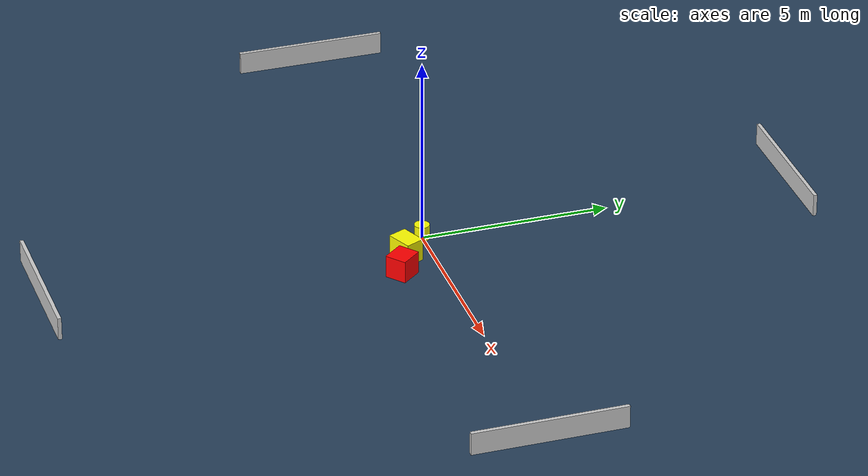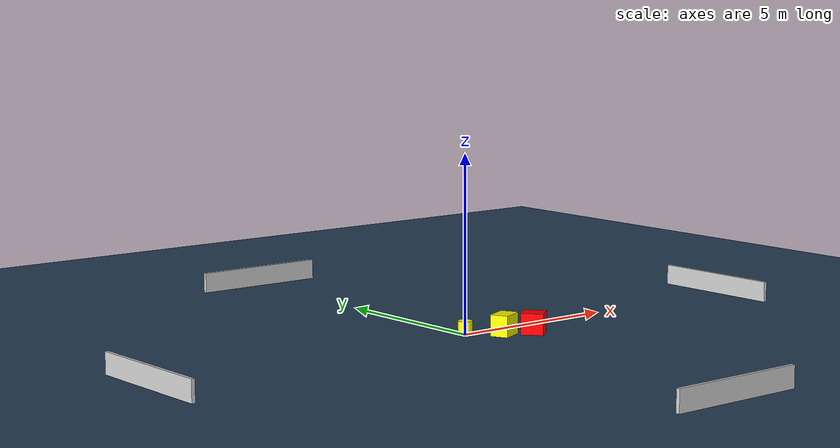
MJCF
<?xml version="1.0" ?>
<mujoco model="generated_environment">
  <option timestep="0.01" integrator="RK4" cone="elliptic"/>
  <default>
    <geom density="1"/>
  </default>
  <asset>
    <texture builtin="gradient" height="3072" name="skybox" rgb1="0.3 0.5 0.7" rgb2="0 0 0" type="skybox" width="512"/>
    <texture builtin="checker" height="300" name="groundplane" rgb1="0.2 0.3 0.4" rgb2="0.1 0.2 0.3" type="2d" width="300"/>
    <material name="groundplane" reflectance="0.2" texrepeat="5 5" texture="groundplane"/>
  </asset>
  <worldbody>
    <light dir="0 0 -1" directional="true" pos="0 0 1.5"/>
    <geom condim="3" friction="0.5 0.005 0.001" material="groundplane" name="floor" pos="0 0 0" size="0 0 0.05" type="plane"/>
    <body name="walls">
      <geom name="wall_1" condim="4" pos="-10.0 0.0 0.3" rgba="0.800000011920929 0.800000011920929 0.800000011920929 1.0" size="0.05 2.0 0.3" type="box"/>
      <geom name="wall_2" condim="4" pos="10.0 0.0 0.3" rgba="0.800000011920929 0.800000011920929 0.800000011920929 1.0" size="0.05 2.0 0.3" type="box"/>
      <geom name="wall_3" condim="4" pos="0.0 -10.0 0.3" rgba="0.800000011920929 0.800000011920929 0.800000011920929 1.0" size="2.0 0.05 0.3" type="box"/>
      <geom name="wall_4" condim="4" pos="0.0 10.0 0.3" rgba="0.800000011920929 0.800000011920929 0.800000011920929 1.0" size="2.0 0.05 0.3" type="box"/>
    </body>
    <body name="robot">
      <joint name="joint_x" type="slide" pos="0 0 0" axis="1 0 0"/>
      <joint name="joint_y" type="slide" pos="0 0 0" axis="0 1 0"/>
      <geom name="robot" type="cylinder" pos="0.0 0.0 0.2" size="0.2 0.2 0.0" mass="5.0" friction="1.0 0.005 0.0001" condim="4" rgba="1.0 1.0 0.0 1.0"/>
    </body>
    <body name="obstacle_1_movable">
      <geom name="obstacle_1_movable" condim="4" pos="0.8305696925650794 -0.6829751043194408 0.3" euler="0 0 113.67732032818502" friction="0.0 0.005 0.001" rgba="1.0 1.0 0.0 1.0" size="0.2558217813564036 0.3519301364168015 0.3" type="box" mass="0.1"/>
      <joint type="free"/>
    </body>
    <body name="obstacle_2_static">
      <geom name="obstacle_2_static" condim="4" pos="1.592092018107224 -1.0293124332401973 0.3" euler="0 0 309.36280829423816" friction="0.0 0.005 0.001" rgba="1.0 0.0 0.0 1.0" size="0.3159499403537885 0.29010342676701084 0.3" type="box"/>
    </body>
  </worldbody>
  <actuator>
    <motor name="actuator_x" joint="joint_x" gear="1" ctrlrange="-1 1"/>
    <motor name="actuator_y" joint="joint_y" gear="1" ctrlrange="-1 1"/>
  </actuator>
</mujoco>
